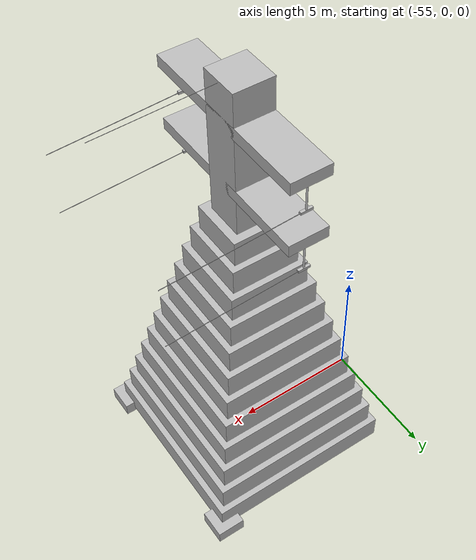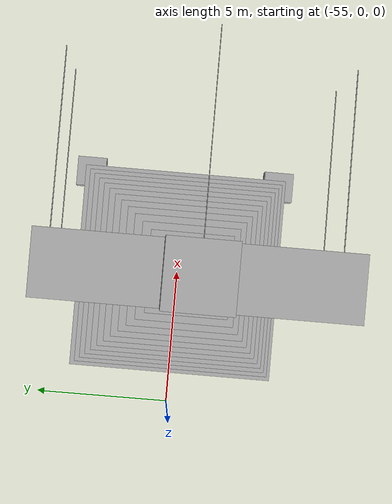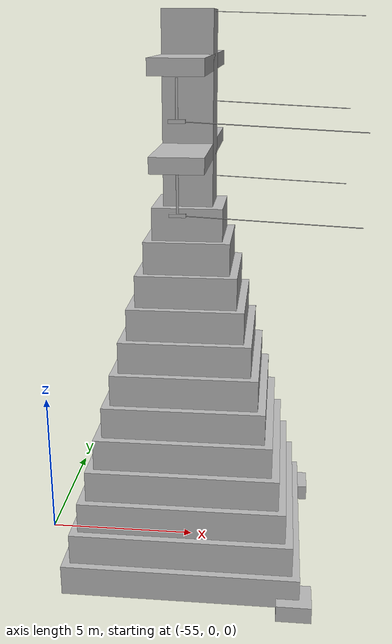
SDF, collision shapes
<sdf version="1.10">
 <model name="powerline_corridor">
  <static>true</static>
  <link name="corridor">
   <visual name="tower_0_steel">
    <pose>-50 0 3.7708724 0 0 0</pose>
    <geometry><mesh><uri>model://powerline_corridor/meshes/steel.stl</uri></mesh></geometry>
    <material>
     <ambient>.48 .53 .58 1</ambient>
     <diffuse>.48 .53 .58 1</diffuse>
     <specular>.25 .25 .25 1</specular>
    </material>
   </visual>
   <visual name="tower_0_insulators">
    <pose>-50 0 3.7708724 0 0 0</pose>
    <geometry><mesh><uri>model://powerline_corridor/meshes/insulators.stl</uri></mesh></geometry>
    <material>
     <ambient>.16 .42 .36 1</ambient>
     <diffuse>.16 .42 .36 1</diffuse>
     <specular>.25 .25 .25 1</specular>
    </material>
   </visual>
   <visual name="footing_0_0">
    <pose>-53.6 -3.6 0.05 0 0 0</pose>
    <geometry><box><size>1.1 1.1 0.55</size></box></geometry>
    <material>
     <ambient>.56 .56 .53 1</ambient>
     <diffuse>.56 .56 .53 1</diffuse>
     <specular>.25 .25 .25 1</specular>
    </material>
   </visual>
   <visual name="footing_0_1">
    <pose>-53.6 3.6 0.05 0 0 0</pose>
    <geometry><box><size>1.1 1.1 0.55</size></box></geometry>
    <material>
     <ambient>.56 .56 .53 1</ambient>
     <diffuse>.56 .56 .53 1</diffuse>
     <specular>.25 .25 .25 1</specular>
    </material>
   </visual>
   <visual name="footing_0_2">
    <pose>-46.4 -3.6 0.05 0 0 0</pose>
    <geometry><box><size>1.1 1.1 0.55</size></box></geometry>
    <material>
     <ambient>.56 .56 .53 1</ambient>
     <diffuse>.56 .56 .53 1</diffuse>
     <specular>.25 .25 .25 1</specular>
    </material>
   </visual>
   <visual name="footing_0_3">
    <pose>-46.4 3.6 0.05 0 0 0</pose>
    <geometry><box><size>1.1 1.1 0.55</size></box></geometry>
    <material>
     <ambient>.56 .56 .53 1</ambient>
     <diffuse>.56 .56 .53 1</diffuse>
     <specular>.25 .25 .25 1</specular>
    </material>
   </visual>
   <visual name="plate_0">
    <pose>-50 -2.4 5 0 0 0</pose>
    <geometry><box><size>1.0 0.025 0.6</size></box></geometry>
    <material>
     <ambient>.18 .27 .31 1</ambient>
     <diffuse>.18 .27 .31 1</diffuse>
     <specular>.25 .25 .25 1</specular>
    </material>
   </visual>
   <visual name="tower_1_steel">
    <pose>50 0 3.7708724 0 0 0</pose>
    <geometry><mesh><uri>model://powerline_corridor/meshes/steel.stl</uri></mesh></geometry>
    <material>
     <ambient>.48 .53 .58 1</ambient>
     <diffuse>.48 .53 .58 1</diffuse>
     <specular>.25 .25 .25 1</specular>
    </material>
   </visual>
   <visual name="tower_1_insulators">
    <pose>50 0 3.7708724 0 0 0</pose>
    <geometry><mesh><uri>model://powerline_corridor/meshes/insulators.stl</uri></mesh></geometry>
    <material>
     <ambient>.16 .42 .36 1</ambient>
     <diffuse>.16 .42 .36 1</diffuse>
     <specular>.25 .25 .25 1</specular>
    </material>
   </visual>
   <visual name="footing_1_0">
    <pose>46.4 -3.6 0.05 0 0 0</pose>
    <geometry><box><size>1.1 1.1 0.55</size></box></geometry>
    <material>
     <ambient>.56 .56 .53 1</ambient>
     <diffuse>.56 .56 .53 1</diffuse>
     <specular>.25 .25 .25 1</specular>
    </material>
   </visual>
   <visual name="footing_1_1">
    <pose>46.4 3.6 0.05 0 0 0</pose>
    <geometry><box><size>1.1 1.1 0.55</size></box></geometry>
    <material>
     <ambient>.56 .56 .53 1</ambient>
     <diffuse>.56 .56 .53 1</diffuse>
     <specular>.25 .25 .25 1</specular>
    </material>
   </visual>
   <visual name="footing_1_2">
    <pose>53.6 -3.6 0.05 0 0 0</pose>
    <geometry><box><size>1.1 1.1 0.55</size></box></geometry>
    <material>
     <ambient>.56 .56 .53 1</ambient>
     <diffuse>.56 .56 .53 1</diffuse>
     <specular>.25 .25 .25 1</specular>
    </material>
   </visual>
   <visual name="footing_1_3">
    <pose>53.6 3.6 0.05 0 0 0</pose>
    <geometry><box><size>1.1 1.1 0.55</size></box></geometry>
    <material>
     <ambient>.56 .56 .53 1</ambient>
     <diffuse>.56 .56 .53 1</diffuse>
     <specular>.25 .25 .25 1</specular>
    </material>
   </visual>
   <visual name="plate_1">
    <pose>50 -2.4 5 0 0 0</pose>
    <geometry><box><size>1.0 0.025 0.6</size></box></geometry>
    <material>
     <ambient>.18 .27 .31 1</ambient>
     <diffuse>.18 .27 .31 1</diffuse>
     <specular>.25 .25 .25 1</specular>
    </material>
   </visual>
   <visual name="phase_0_0_core_0">
    <pose>-50.0 -3.35 12.837 0 0.0 0.0</pose>
    <geometry><cylinder><radius>0.035</radius><length>1.0999999999999996</length></cylinder></geometry>
    <material>
     <ambient>.36 .39 .42 1</ambient>
     <diffuse>.36 .39 .42 1</diffuse>
     <specular>.25 .25 .25 1</specular>
    </material>
   </visual>
   <visual name="phase_0_0_clamp_0">
    <pose>-50 -3.35 12.287 0 0 0</pose>
    <geometry><box><size>0.46 0.1 0.1</size></box></geometry>
    <material>
     <ambient>.30 .33 .36 1</ambient>
     <diffuse>.30 .33 .36 1</diffuse>
     <specular>.25 .25 .25 1</specular>
    </material>
   </visual>
   <visual name="phase_0_0_damper_stem_0">
    <pose>-49.2 -3.35 12.15230372708189 0 3.141592653589793 0.0</pose>
    <geometry><cylinder><radius>0.012</radius><length>0.1899999999999995</length></cylinder></geometry>
    <material>
     <ambient>.6 .64 .68 1</ambient>
     <diffuse>.6 .64 .68 1</diffuse>
     <specular>.25 .25 .25 1</specular>
    </material>
   </visual>
   <visual name="phase_0_0_damper_0">
    <pose>-49.2 -3.35 12.05730372708189 0 1.5707963267948966 0.0</pose>
    <geometry><cylinder><radius>0.045</radius><length>0.3199999999999932</length></cylinder></geometry>
    <material>
     <ambient>.26 .28 .3 1</ambient>
     <diffuse>.26 .28 .3 1</diffuse>
     <specular>.25 .25 .25 1</specular>
    </material>
   </visual>
   <visual name="phase_0_0_core_1">
    <pose>50.0 -3.35 12.837 0 0.0 0.0</pose>
    <geometry><cylinder><radius>0.035</radius><length>1.0999999999999996</length></cylinder></geometry>
    <material>
     <ambient>.36 .39 .42 1</ambient>
     <diffuse>.36 .39 .42 1</diffuse>
     <specular>.25 .25 .25 1</specular>
    </material>
   </visual>
   <visual name="phase_0_0_clamp_1">
    <pose>50 -3.35 12.287 0 0 0</pose>
    <geometry><box><size>0.46 0.1 0.1</size></box></geometry>
    <material>
     <ambient>.30 .33 .36 1</ambient>
     <diffuse>.30 .33 .36 1</diffuse>
     <specular>.25 .25 .25 1</specular>
    </material>
   </visual>
   <visual name="phase_0_0_damper_stem_1">
    <pose>49.2 -3.35 12.15230372708189 0 3.141592653589793 0.0</pose>
    <geometry><cylinder><radius>0.012</radius><length>0.1899999999999995</length></cylinder></geometry>
    <material>
     <ambient>.6 .64 .68 1</ambient>
     <diffuse>.6 .64 .68 1</diffuse>
     <specular>.25 .25 .25 1</specular>
    </material>
   </visual>
   <visual name="phase_0_0_damper_1">
    <pose>49.2 -3.35 12.05730372708189 0 1.5707963267948966 0.0</pose>
    <geometry><cylinder><radius>0.045</radius><length>0.3199999999999932</length></cylinder></geometry>
    <material>
     <ambient>.26 .28 .3 1</ambient>
     <diffuse>.26 .28 .3 1</diffuse>
     <specular>.25 .25 .25 1</specular>
    </material>
   </visual>
   <visual name="phase_0_1_core_0">
    <pose>-50.0 3.35 12.837 0 0.0 0.0</pose>
    <geometry><cylinder><radius>0.035</radius><length>1.0999999999999996</length></cylinder></geometry>
    <material>
     <ambient>.36 .39 .42 1</ambient>
     <diffuse>.36 .39 .42 1</diffuse>
     <specular>.25 .25 .25 1</specular>
    </material>
   </visual>
   <visual name="phase_0_1_clamp_0">
    <pose>-50 3.35 12.287 0 0 0</pose>
    <geometry><box><size>0.46 0.1 0.1</size></box></geometry>
    <material>
     <ambient>.30 .33 .36 1</ambient>
     <diffuse>.30 .33 .36 1</diffuse>
     <specular>.25 .25 .25 1</specular>
    </material>
   </visual>
   <visual name="phase_0_1_damper_stem_0">
    <pose>-49.2 3.35 12.15230372708189 0 3.141592653589793 0.0</pose>
    <geometry><cylinder><radius>0.012</radius><length>0.1899999999999995</length></cylinder></geometry>
    <material>
     <ambient>.6 .64 .68 1</ambient>
     <diffuse>.6 .64 .68 1</diffuse>
     <specular>.25 .25 .25 1</specular>
    </material>
   </visual>
   <visual name="phase_0_1_damper_0">
    <pose>-49.2 3.35 12.05730372708189 0 1.5707963267948966 0.0</pose>
    <geometry><cylinder><radius>0.045</radius><length>0.3199999999999932</length></cylinder></geometry>
    <material>
     <ambient>.26 .28 .3 1</ambient>
     <diffuse>.26 .28 .3 1</diffuse>
     <specular>.25 .25 .25 1</specular>
    </material>
   </visual>
   <visual name="phase_0_1_core_1">
    <pose>50.0 3.35 12.837 0 0.0 0.0</pose>
    <geometry><cylinder><radius>0.035</radius><length>1.0999999999999996</length></cylinder></geometry>
    <material>
     <ambient>.36 .39 .42 1</ambient>
     <diffuse>.36 .39 .42 1</diffuse>
     <specular>.25 .25 .25 1</specular>
    </material>
   </visual>
   <visual name="phase_0_1_clamp_1">
    <pose>50 3.35 12.287 0 0 0</pose>
    <geometry><box><size>0.46 0.1 0.1</size></box></geometry>
    <material>
     <ambient>.30 .33 .36 1</ambient>
     <diffuse>.30 .33 .36 1</diffuse>
     <specular>.25 .25 .25 1</specular>
    </material>
   </visual>
   <visual name="phase_0_1_damper_stem_1">
    <pose>49.2 3.35 12.15230372708189 0 3.141592653589793 0.0</pose>
    <geometry><cylinder><radius>0.012</radius><length>0.1899999999999995</length></cylinder></geometry>
    <material>
     <ambient>.6 .64 .68 1</ambient>
     <diffuse>.6 .64 .68 1</diffuse>
     <specular>.25 .25 .25 1</specular>
    </material>
   </visual>
   <visual name="phase_0_1_damper_1">
    <pose>49.2 3.35 12.05730372708189 0 1.5707963267948966 0.0</pose>
    <geometry><cylinder><radius>0.045</radius><length>0.3199999999999932</length></cylinder></geometry>
    <material>
     <ambient>.26 .28 .3 1</ambient>
     <diffuse>.26 .28 .3 1</diffuse>
     <specular>.25 .25 .25 1</specular>
    </material>
   </visual>
   <visual name="phase_1_0_core_0">
    <pose>-50.0 -3.35 15.337 0 0.0 0.0</pose>
    <geometry><cylinder><radius>0.035</radius><length>1.0999999999999996</length></cylinder></geometry>
    <material>
     <ambient>.36 .39 .42 1</ambient>
     <diffuse>.36 .39 .42 1</diffuse>
     <specular>.25 .25 .25 1</specular>
    </material>
   </visual>
   <visual name="phase_1_0_clamp_0">
    <pose>-50 -3.35 14.787 0 0 0</pose>
    <geometry><box><size>0.46 0.1 0.1</size></box></geometry>
    <material>
     <ambient>.30 .33 .36 1</ambient>
     <diffuse>.30 .33 .36 1</diffuse>
     <specular>.25 .25 .25 1</specular>
    </material>
   </visual>
   <visual name="phase_1_0_damper_stem_0">
    <pose>-49.2 -3.35 14.65230372708189 0 3.141592653589793 0.0</pose>
    <geometry><cylinder><radius>0.012</radius><length>0.1899999999999995</length></cylinder></geometry>
    <material>
     <ambient>.6 .64 .68 1</ambient>
     <diffuse>.6 .64 .68 1</diffuse>
     <specular>.25 .25 .25 1</specular>
    </material>
   </visual>
   <visual name="phase_1_0_damper_0">
    <pose>-49.2 -3.35 14.55730372708189 0 1.5707963267948966 0.0</pose>
    <geometry><cylinder><radius>0.045</radius><length>0.3199999999999932</length></cylinder></geometry>
    <material>
     <ambient>.26 .28 .3 1</ambient>
     <diffuse>.26 .28 .3 1</diffuse>
     <specular>.25 .25 .25 1</specular>
    </material>
   </visual>
   <visual name="phase_1_0_core_1">
    <pose>50.0 -3.35 15.337 0 0.0 0.0</pose>
    <geometry><cylinder><radius>0.035</radius><length>1.0999999999999996</length></cylinder></geometry>
    <material>
     <ambient>.36 .39 .42 1</ambient>
     <diffuse>.36 .39 .42 1</diffuse>
     <specular>.25 .25 .25 1</specular>
    </material>
   </visual>
   <visual name="phase_1_0_clamp_1">
    <pose>50 -3.35 14.787 0 0 0</pose>
    <geometry><box><size>0.46 0.1 0.1</size></box></geometry>
    <material>
     <ambient>.30 .33 .36 1</ambient>
     <diffuse>.30 .33 .36 1</diffuse>
     <specular>.25 .25 .25 1</specular>
    </material>
   </visual>
   <visual name="phase_1_0_damper_stem_1">
    <pose>49.2 -3.35 14.65230372708189 0 3.141592653589793 0.0</pose>
    <geometry><cylinder><radius>0.012</radius><length>0.1899999999999995</length></cylinder></geometry>
    <material>
     <ambient>.6 .64 .68 1</ambient>
     <diffuse>.6 .64 .68 1</diffuse>
     <specular>.25 .25 .25 1</specular>
    </material>
   </visual>
   <visual name="phase_1_0_damper_1">
    <pose>49.2 -3.35 14.55730372708189 0 1.5707963267948966 0.0</pose>
    <geometry><cylinder><radius>0.045</radius><length>0.3199999999999932</length></cylinder></geometry>
    <material>
     <ambient>.26 .28 .3 1</ambient>
     <diffuse>.26 .28 .3 1</diffuse>
     <specular>.25 .25 .25 1</specular>
    </material>
   </visual>
   <visual name="phase_1_1_core_0">
    <pose>-50.0 3.35 15.337 0 0.0 0.0</pose>
    <geometry><cylinder><radius>0.035</radius><length>1.0999999999999996</length></cylinder></geometry>
    <material>
     <ambient>.36 .39 .42 1</ambient>
     <diffuse>.36 .39 .42 1</diffuse>
     <specular>.25 .25 .25 1</specular>
    </material>
   </visual>
   <visual name="phase_1_1_clamp_0">
    <pose>-50 3.35 14.787 0 0 0</pose>
    <geometry><box><size>0.46 0.1 0.1</size></box></geometry>
    <material>
     <ambient>.30 .33 .36 1</ambient>
     <diffuse>.30 .33 .36 1</diffuse>
     <specular>.25 .25 .25 1</specular>
    </material>
   </visual>
   <visual name="phase_1_1_damper_stem_0">
    <pose>-49.2 3.35 14.65230372708189 0 3.141592653589793 0.0</pose>
    <geometry><cylinder><radius>0.012</radius><length>0.1899999999999995</length></cylinder></geometry>
    <material>
     <ambient>.6 .64 .68 1</ambient>
     <diffuse>.6 .64 .68 1</diffuse>
     <specular>.25 .25 .25 1</specular>
    </material>
   </visual>
   <visual name="phase_1_1_damper_0">
    <pose>-49.2 3.35 14.55730372708189 0 1.5707963267948966 0.0</pose>
    <geometry><cylinder><radius>0.045</radius><length>0.3199999999999932</length></cylinder></geometry>
    <material>
     <ambient>.26 .28 .3 1</ambient>
     <diffuse>.26 .28 .3 1</diffuse>
     <specular>.25 .25 .25 1</specular>
    </material>
   </visual>
   <visual name="phase_1_1_core_1">
    <pose>50.0 3.35 15.337 0 0.0 0.0</pose>
    <geometry><cylinder><radius>0.035</radius><length>1.0999999999999996</length></cylinder></geometry>
    <material>
     <ambient>.36 .39 .42 1</ambient>
     <diffuse>.36 .39 .42 1</diffuse>
     <specular>.25 .25 .25 1</specular>
    </material>
   </visual>
   <visual name="phase_1_1_clamp_1">
    <pose>50 3.35 14.787 0 0 0</pose>
    <geometry><box><size>0.46 0.1 0.1</size></box></geometry>
    <material>
     <ambient>.30 .33 .36 1</ambient>
     <diffuse>.30 .33 .36 1</diffuse>
     <specular>.25 .25 .25 1</specular>
    </material>
   </visual>
   <visual name="phase_1_1_damper_stem_1">
    <pose>49.2 3.35 14.65230372708189 0 3.141592653589793 0.0</pose>
    <geometry><cylinder><radius>0.012</radius><length>0.1899999999999995</length></cylinder></geometry>
    <material>
     <ambient>.6 .64 .68 1</ambient>
     <diffuse>.6 .64 .68 1</diffuse>
     <specular>.25 .25 .25 1</specular>
    </material>
   </visual>
   <visual name="phase_1_1_damper_1">
    <pose>49.2 3.35 14.55730372708189 0 1.5707963267948966 0.0</pose>
    <geometry><cylinder><radius>0.045</radius><length>0.3199999999999932</length></cylinder></geometry>
    <material>
     <ambient>.26 .28 .3 1</ambient>
     <diffuse>.26 .28 .3 1</diffuse>
     <specular>.25 .25 .25 1</specular>
    </material>
   </visual>
   <visual name="phase_0_0">
    <geometry><mesh><uri>model://powerline_corridor/meshes/phase_0_0.stl</uri></mesh></geometry>
    <material>
     <ambient>.63 .66 .69 1</ambient>
     <diffuse>.63 .66 .69 1</diffuse>
     <specular>.25 .25 .25 1</specular>
    </material>
   </visual>
   <visual name="phase_0_1">
    <geometry><mesh><uri>model://powerline_corridor/meshes/phase_0_1.stl</uri></mesh></geometry>
    <material>
     <ambient>.63 .66 .69 1</ambient>
     <diffuse>.63 .66 .69 1</diffuse>
     <specular>.25 .25 .25 1</specular>
    </material>
   </visual>
   <visual name="phase_1_0">
    <geometry><mesh><uri>model://powerline_corridor/meshes/phase_1_0.stl</uri></mesh></geometry>
    <material>
     <ambient>.63 .66 .69 1</ambient>
     <diffuse>.63 .66 .69 1</diffuse>
     <specular>.25 .25 .25 1</specular>
    </material>
   </visual>
   <visual name="phase_1_1">
    <geometry><mesh><uri>model://powerline_corridor/meshes/phase_1_1.stl</uri></mesh></geometry>
    <material>
     <ambient>.63 .66 .69 1</ambient>
     <diffuse>.63 .66 .69 1</diffuse>
     <specular>.25 .25 .25 1</specular>
    </material>
   </visual>
   <visual name="earth_wire">
    <geometry><mesh><uri>model://powerline_corridor/meshes/earth_wire.stl</uri></mesh></geometry>
    <material>
     <ambient>.40 .43 .46 1</ambient>
     <diffuse>.40 .43 .46 1</diffuse>
     <specular>.25 .25 .25 1</specular>
    </material>
   </visual>
  </link>
  <link name="span_collision_10">
   <collision name="tower_0_envelope_0">
    <pose>-50 0 0.5 0 0 0</pose>
    <geometry><box><size>7.54 7.54 1</size></box></geometry>
   </collision>
   <collision name="tower_0_envelope_1">
    <pose>-50 0 1.5 0 0 0</pose>
    <geometry><box><size>7.05 7.05 1</size></box></geometry>
   </collision>
   <collision name="tower_0_envelope_2">
    <pose>-50 0 2.5 0 0 0</pose>
    <geometry><box><size>6.5600000000000005 6.5600000000000005 1</size></box></geometry>
   </collision>
   <collision name="tower_0_envelope_3">
    <pose>-50 0 3.5 0 0 0</pose>
    <geometry><box><size>6.07 6.07 1</size></box></geometry>
   </collision>
   <collision name="tower_0_envelope_4">
    <pose>-50 0 4.5 0 0 0</pose>
    <geometry><box><size>5.58 5.58 1</size></box></geometry>
   </collision>
   <collision name="tower_0_envelope_5">
    <pose>-50 0 5.5 0 0 0</pose>
    <geometry><box><size>5.09 5.09 1</size></box></geometry>
   </collision>
   <collision name="tower_0_envelope_6">
    <pose>-50 0 6.5 0 0 0</pose>
    <geometry><box><size>4.6 4.6 1</size></box></geometry>
   </collision>
   <collision name="tower_0_envelope_7">
    <pose>-50 0 7.5 0 0 0</pose>
    <geometry><box><size>4.11 4.11 1</size></box></geometry>
   </collision>
   <collision name="tower_0_envelope_8">
    <pose>-50 0 8.5 0 0 0</pose>
    <geometry><box><size>3.62 3.62 1</size></box></geometry>
   </collision>
   <collision name="tower_0_envelope_9">
    <pose>-50 0 9.5 0 0 0</pose>
    <geometry><box><size>3.13 3.13 1</size></box></geometry>
   </collision>
   <collision name="tower_0_envelope_10">
    <pose>-50 0 10.5 0 0 0</pose>
    <geometry><box><size>2.6399999999999997 2.6399999999999997 1</size></box></geometry>
   </collision>
   <collision name="tower_0_envelope_11">
    <pose>-50 0 11.5 0 0 0</pose>
    <geometry><box><size>2.1500000000000004 2.1500000000000004 1</size></box></geometry>
   </collision>
   <collision name="tower_0_arm_0">
    <pose>-50 0 13.65 0 0 0</pose>
    <geometry><box><size>1.5 7.1 .45</size></box></geometry>
   </collision>
   <collision name="tower_0_arm_1">
    <pose>-50 0 16.15 0 0 0</pose>
    <geometry><box><size>1.5 7.1 .45</size></box></geometry>
   </collision>
   <collision name="tower_0_upper_core">
    <pose>-50 0 14.8 0 0 0</pose>
    <geometry><box><size>1.5 1.5 5.6</size></box></geometry>
   </collision>
   <collision name="footing_0_2_collision">
    <pose>-46.4 -3.6 0.05 0 0 0</pose>
    <geometry><box><size>1.1 1.1 0.55</size></box></geometry>
   </collision>
   <collision name="footing_0_3_collision">
    <pose>-46.4 3.6 0.05 0 0 0</pose>
    <geometry><box><size>1.1 1.1 0.55</size></box></geometry>
   </collision>
   <collision name="phase_0_0_core_0_collision">
    <pose>-50.0 -3.35 12.837 0 0.0 0.0</pose>
    <geometry><cylinder><radius>0.035</radius><length>1.0999999999999996</length></cylinder></geometry>
   </collision>
   <collision name="phase_0_0_clamp_0_collision">
    <pose>-50 -3.35 12.287 0 0 0</pose>
    <geometry><box><size>0.46 0.1 0.1</size></box></geometry>
   </collision>
   <collision name="phase_0_0_0_collision">
    <pose>-49.5 -3.35 12.262239890448676 0 1.6202761266646943 0.0</pose>
    <geometry><cylinder><radius>0.012</radius><length>1.0012253752777016</length></cylinder></geometry>
   </collision>
   <collision name="phase_0_0_1_collision">
    <pose>-48.5 -3.35 12.213220271757926 0 1.6192773259647162 0.0</pose>
    <geometry><cylinder><radius>0.012</radius><length>1.001176355661051</length></cylinder></geometry>
   </collision>
   <collision name="phase_0_0_2_collision">
    <pose>-47.5 -3.35 12.165201829631386 0 1.618278476859848 0.0</pose>
    <geometry><cylinder><radius>0.012</radius><length>1.0011283372209305</length></cylinder></geometry>
   </collision>
   <collision name="phase_0_0_3_collision">
    <pose>-46.5 -3.35 12.118184516050576 0 1.6172795803440743 0.0</pose>
    <geometry><cylinder><radius>0.012</radius><length>1.0010813199093092</length></cylinder></geometry>
   </collision>
   <collision name="phase_0_0_4_collision">
    <pose>-45.5 -3.35 12.072168283998106 0 1.616280637412234 0.0</pose>
    <geometry><cylinder><radius>0.012</radius><length>1.0010353036791855</length></cylinder></geometry>
   </collision>
   <collision name="phase_0_1_core_0_collision">
    <pose>-50.0 3.35 12.837 0 0.0 0.0</pose>
    <geometry><cylinder><radius>0.035</radius><length>1.0999999999999996</length></cylinder></geometry>
   </collision>
   <collision name="phase_0_1_clamp_0_collision">
    <pose>-50 3.35 12.287 0 0 0</pose>
    <geometry><box><size>0.46 0.1 0.1</size></box></geometry>
   </collision>
   <collision name="phase_0_1_0_collision">
    <pose>-49.5 3.35 12.262239890448676 0 1.6202761266646943 0.0</pose>
    <geometry><cylinder><radius>0.012</radius><length>1.0012253752777016</length></cylinder></geometry>
   </collision>
   <collision name="phase_0_1_1_collision">
    <pose>-48.5 3.35 12.213220271757926 0 1.6192773259647162 0.0</pose>
    <geometry><cylinder><radius>0.012</radius><length>1.001176355661051</length></cylinder></geometry>
   </collision>
   <collision name="phase_0_1_2_collision">
    <pose>-47.5 3.35 12.165201829631386 0 1.618278476859848 0.0</pose>
    <geometry><cylinder><radius>0.012</radius><length>1.0011283372209305</length></cylinder></geometry>
   </collision>
   <collision name="phase_0_1_3_collision">
    <pose>-46.5 3.35 12.118184516050576 0 1.6172795803440743 0.0</pose>
    <geometry><cylinder><radius>0.012</radius><length>1.0010813199093092</length></cylinder></geometry>
   </collision>
   <collision name="phase_0_1_4_collision">
    <pose>-45.5 3.35 12.072168283998106 0 1.616280637412234 0.0</pose>
    <geometry><cylinder><radius>0.012</radius><length>1.0010353036791855</length></cylinder></geometry>
   </collision>
   <collision name="phase_1_0_core_0_collision">
    <pose>-50.0 -3.35 15.337 0 0.0 0.0</pose>
    <geometry><cylinder><radius>0.035</radius><length>1.0999999999999996</length></cylinder></geometry>
   </collision>
   <collision name="phase_1_0_clamp_0_collision">
    <pose>-50 -3.35 14.787 0 0 0</pose>
    <geometry><box><size>0.46 0.1 0.1</size></box></geometry>
   </collision>
   <collision name="phase_1_0_0_collision">
    <pose>-49.5 -3.35 14.762239890448676 0 1.6202761266646943 0.0</pose>
    <geometry><cylinder><radius>0.012</radius><length>1.0012253752777016</length></cylinder></geometry>
   </collision>
   <collision name="phase_1_0_1_collision">
    <pose>-48.5 -3.35 14.713220271757926 0 1.6192773259647162 0.0</pose>
    <geometry><cylinder><radius>0.012</radius><length>1.001176355661051</length></cylinder></geometry>
   </collision>
   <collision name="phase_1_0_2_collision">
    <pose>-47.5 -3.35 14.665201829631386 0 1.618278476859848 0.0</pose>
    <geometry><cylinder><radius>0.012</radius><length>1.0011283372209305</length></cylinder></geometry>
   </collision>
   <collision name="phase_1_0_3_collision">
    <pose>-46.5 -3.35 14.618184516050576 0 1.6172795803440743 0.0</pose>
    <geometry><cylinder><radius>0.012</radius><length>1.0010813199093092</length></cylinder></geometry>
   </collision>
   <collision name="phase_1_0_4_collision">
    <pose>-45.5 -3.35 14.572168283998106 0 1.616280637412234 0.0</pose>
    <geometry><cylinder><radius>0.012</radius><length>1.0010353036791855</length></cylinder></geometry>
   </collision>
   <collision name="phase_1_1_core_0_collision">
    <pose>-50.0 3.35 15.337 0 0.0 0.0</pose>
    <geometry><cylinder><radius>0.035</radius><length>1.0999999999999996</length></cylinder></geometry>
   </collision>
   <collision name="phase_1_1_clamp_0_collision">
    <pose>-50 3.35 14.787 0 0 0</pose>
    <geometry><box><size>0.46 0.1 0.1</size></box></geometry>
   </collision>
   <collision name="phase_1_1_0_collision">
    <pose>-49.5 3.35 14.762239890448676 0 1.6202761266646943 0.0</pose>
    <geometry><cylinder><radius>0.012</radius><length>1.0012253752777016</length></cylinder></geometry>
   </collision>
   <collision name="phase_1_1_1_collision">
    <pose>-48.5 3.35 14.713220271757926 0 1.6192773259647162 0.0</pose>
    <geometry><cylinder><radius>0.012</radius><length>1.001176355661051</length></cylinder></geometry>
   </collision>
   <collision name="phase_1_1_2_collision">
    <pose>-47.5 3.35 14.665201829631386 0 1.618278476859848 0.0</pose>
    <geometry><cylinder><radius>0.012</radius><length>1.0011283372209305</length></cylinder></geometry>
   </collision>
   <collision name="phase_1_1_3_collision">
    <pose>-46.5 3.35 14.618184516050576 0 1.6172795803440743 0.0</pose>
    <geometry><cylinder><radius>0.012</radius><length>1.0010813199093092</length></cylinder></geometry>
   </collision>
   <collision name="phase_1_1_4_collision">
    <pose>-45.5 3.35 14.572168283998106 0 1.616280637412234 0.0</pose>
    <geometry><cylinder><radius>0.012</radius><length>1.0010353036791855</length></cylinder></geometry>
   </collision>
   <collision name="earth_wire_0_collision">
    <pose>-49.5 0.0 17.535189362245678 0 1.6004913681310091 0.0</pose>
    <geometry><cylinder><radius>0.008</radius><length>1.000441059790435</length></cylinder></geometry>
   </collision>
   <collision name="earth_wire_1_collision">
    <pose>-48.5 0.0 17.50578571317683 0 1.599891639329742 0.0</pose>
    <geometry><cylinder><radius>0.008</radius><length>1.0004234179540916</length></cylinder></geometry>
   </collision>
   <collision name="earth_wire_2_collision">
    <pose>-47.5 0.0 17.476982306198963 0 1.5992919000606622 0.0</pose>
    <geometry><cylinder><radius>0.008</radius><length>1.0004061362557999</length></cylinder></geometry>
   </collision>
   <collision name="earth_wire_3_collision">
    <pose>-46.5 0.0 17.4487791309433 0 1.5986921505388798 0.0</pose>
    <geometry><cylinder><radius>0.008</radius><length>1.0003892146893258</length></cylinder></geometry>
   </collision>
   <collision name="earth_wire_4_collision">
    <pose>-45.5 0.0 17.42117617725703 0 1.5980923909806386 0.0</pose>
    <geometry><cylinder><radius>0.008</radius><length>1.0003726532485975</length></cylinder></geometry>
   </collision>
  </link>
 </model>
</sdf>
